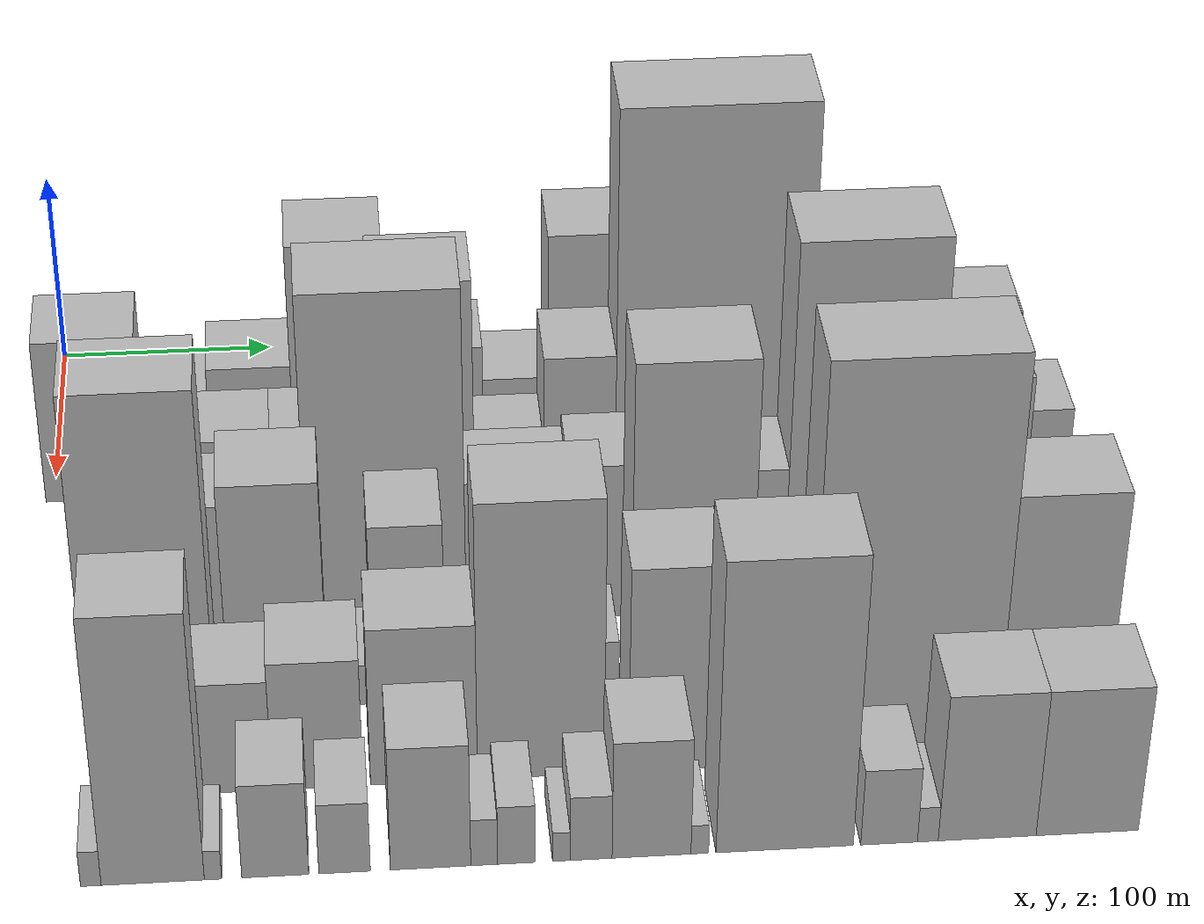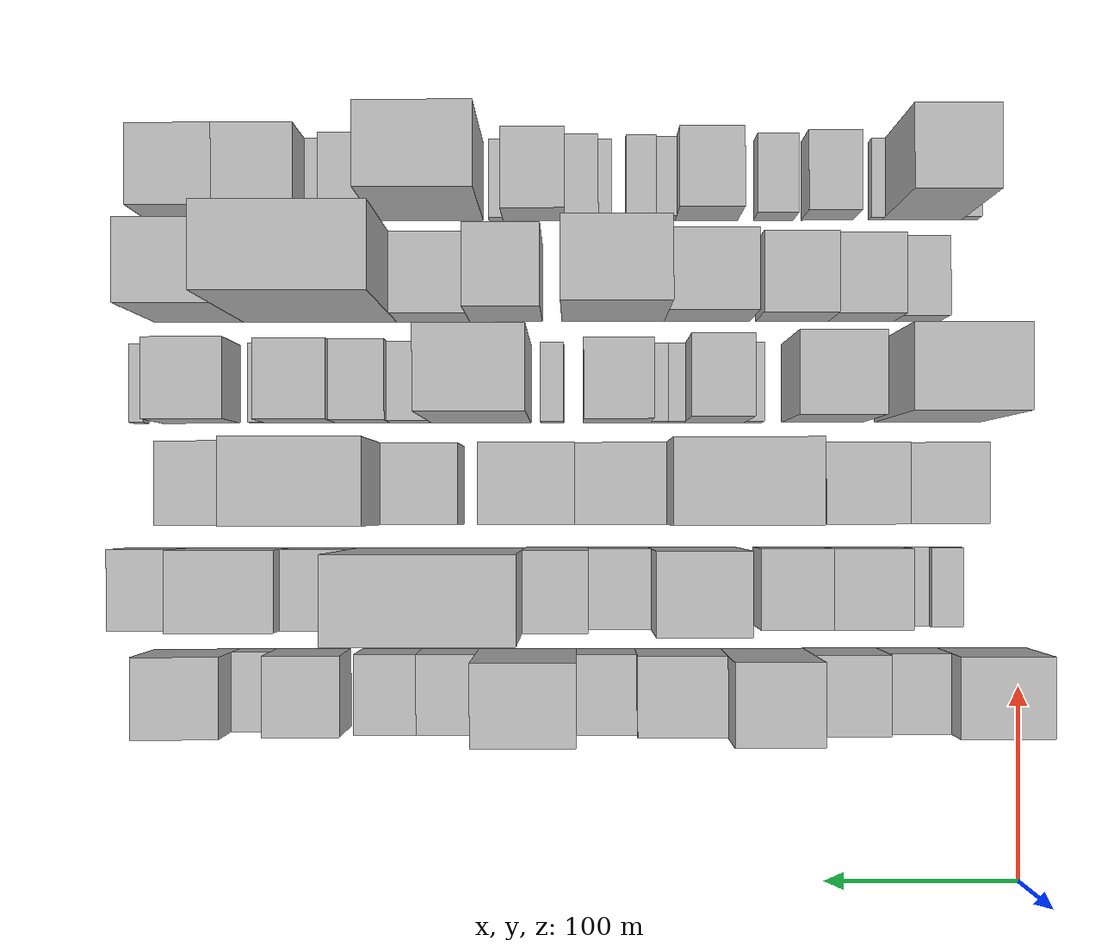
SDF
<sdf version="1.6">
 <world name="default">
  <model name="building_24">
   <static>1</static>
   <pose>100.0000 18.9389 0 0.000000 0.000000 0.000000</pose>
   <link name="link">
    <pose>0 0 43.50 0 0 0</pose>
    <collision name="collision"><geometry><box><size>40.0000 45.7362 87.0000</size></box></geometry></collision>
    <visual name="visual">
     <cast_shadows>0</cast_shadows>
     <geometry><box><size>40.0000 45.7362 87.0000</size></box></geometry>
     <material>
      <script>
       <uri>model://HANNAS_wall/materials/scripts</uri>
       <uri>model://HANNAS_wall/materials/textures</uri>
       <name>vrc/HANNAS_wall</name>
      </script>
     </material>
    </visual>
   </link>
  </model>
  <model name="building_25">
   <static>1</static>
   <pose>100.0000 57.3838 0 0.000000 0.000000 0.000000</pose>
   <link name="link">
    <pose>0 0 27.00 0 0 0</pose>
    <collision name="collision"><geometry><box><size>40.0000 31.1536 54.0000</size></box></geometry></collision>
    <visual name="visual">
     <cast_shadows>0</cast_shadows>
     <geometry><box><size>40.0000 31.1536 54.0000</size></box></geometry>
     <material>
      <script>
       <uri>model://HANNAS_wall/materials/scripts</uri>
       <uri>model://HANNAS_wall/materials/textures</uri>
       <name>vrc/HANNAS_wall</name>
      </script>
     </material>
    </visual>
   </link>
  </model>
  <model name="building_26">
   <static>1</static>
   <pose>100.0000 91.8761 0 0.000000 0.000000 0.000000</pose>
   <link name="link">
    <pose>0 0 34.50 0 0 0</pose>
    <collision name="collision"><geometry><box><size>40.0000 37.8310 69.0000</size></box></geometry></collision>
    <visual name="visual">
     <cast_shadows>0</cast_shadows>
     <geometry><box><size>40.0000 37.8310 69.0000</size></box></geometry>
     <material>
      <script>
       <uri>model://HANNAS_wall/materials/scripts</uri>
       <uri>model://HANNAS_wall/materials/textures</uri>
       <name>vrc/HANNAS_wall</name>
      </script>
     </material>
    </visual>
   </link>
  </model>
  <model name="building_27">
   <static>1</static>
   <pose>100.0000 132.1035 0 0.000000 0.000000 0.000000</pose>
   <link name="link">
    <pose>0 0 66.00 0 0 0</pose>
    <collision name="collision"><geometry><box><size>40.0000 42.6239 132.0000</size></box></geometry></collision>
    <visual name="visual">
     <cast_shadows>0</cast_shadows>
     <geometry><box><size>40.0000 42.6239 132.0000</size></box></geometry>
     <material>
      <script>
       <uri>model://HANNAS_wall/materials/scripts</uri>
       <uri>model://HANNAS_wall/materials/textures</uri>
       <name>vrc/HANNAS_wall</name>
      </script>
     </material>
    </visual>
   </link>
  </model>
  <model name="building_28">
   <static>1</static>
   <pose>100.0000 175.4105 0 0.000000 0.000000 0.000000</pose>
   <link name="link">
    <pose>0 0 37.50 0 0 0</pose>
    <collision name="collision"><geometry><box><size>40.0000 43.9900 75.0000</size></box></geometry></collision>
    <visual name="visual">
     <cast_shadows>0</cast_shadows>
     <geometry><box><size>40.0000 43.9900 75.0000</size></box></geometry>
     <material>
      <script>
       <uri>model://HANNAS_wall/materials/scripts</uri>
       <uri>model://HANNAS_wall/materials/textures</uri>
       <name>vrc/HANNAS_wall</name>
      </script>
     </material>
    </visual>
   </link>
  </model>
  <model name="building_29">
   <static>1</static>
   <pose>100.0000 212.3059 0 0.000000 0.000000 0.000000</pose>
   <link name="link">
    <pose>0 0 28.50 0 0 0</pose>
    <collision name="collision"><geometry><box><size>40.0000 29.8007 57.0000</size></box></geometry></collision>
    <visual name="visual">
     <cast_shadows>0</cast_shadows>
     <geometry><box><size>40.0000 29.8007 57.0000</size></box></geometry>
     <material>
      <script>
       <uri>model://HANNAS_wall/materials/scripts</uri>
       <uri>model://HANNAS_wall/materials/textures</uri>
       <name>vrc/HANNAS_wall</name>
      </script>
     </material>
    </visual>
   </link>
  </model>
  <model name="building_30">
   <static>1</static>
   <pose>100.0000 252.1668 0 0.000000 0.000000 0.000000</pose>
   <link name="link">
    <pose>0 0 66.00 0 0 0</pose>
    <collision name="collision"><geometry><box><size>40.0000 49.9213 132.0000</size></box></geometry></collision>
    <visual name="visual">
     <cast_shadows>0</cast_shadows>
     <geometry><box><size>40.0000 49.9213 132.0000</size></box></geometry>
     <material>
      <script>
       <uri>model://HANNAS_wall/materials/scripts</uri>
       <uri>model://HANNAS_wall/materials/textures</uri>
       <name>vrc/HANNAS_wall</name>
      </script>
     </material>
    </visual>
   </link>
  </model>
  <model name="building_31">
   <static>1</static>
   <pose>100.0000 291.7930 0 0.000000 0.000000 0.000000</pose>
   <link name="link">
    <pose>0 0 28.50 0 0 0</pose>
    <collision name="collision"><geometry><box><size>40.0000 29.3309 57.0000</size></box></geometry></collision>
    <visual name="visual">
     <cast_shadows>0</cast_shadows>
     <geometry><box><size>40.0000 29.3309 57.0000</size></box></geometry>
     <material>
      <script>
       <uri>model://HANNAS_wall/materials/scripts</uri>
       <uri>model://HANNAS_wall/materials/textures</uri>
       <name>vrc/HANNAS_wall</name>
      </script>
     </material>
    </visual>
   </link>
  </model>
  <model name="building_32">
   <static>1</static>
   <pose>100.0000 321.7604 0 0.000000 0.000000 0.000000</pose>
   <link name="link">
    <pose>0 0 28.50 0 0 0</pose>
    <collision name="collision"><geometry><box><size>40.0000 30.6040 57.0000</size></box></geometry></collision>
    <visual name="visual">
     <cast_shadows>0</cast_shadows>
     <geometry><box><size>40.0000 30.6040 57.0000</size></box></geometry>
     <material>
      <script>
       <uri>model://HANNAS_wall/materials/scripts</uri>
       <uri>model://HANNAS_wall/materials/textures</uri>
       <name>vrc/HANNAS_wall</name>
      </script>
     </material>
    </visual>
   </link>
  </model>
  <model name="building_33">
   <static>1</static>
   <pose>100.0000 362.1022 0 0.000000 0.000000 0.000000</pose>
   <link name="link">
    <pose>0 0 34.50 0 0 0</pose>
    <collision name="collision"><geometry><box><size>40.0000 38.0797 69.0000</size></box></geometry></collision>
    <visual name="visual">
     <cast_shadows>0</cast_shadows>
     <geometry><box><size>40.0000 38.0797 69.0000</size></box></geometry>
     <material>
      <script>
       <uri>model://HANNAS_wall/materials/scripts</uri>
       <uri>model://HANNAS_wall/materials/textures</uri>
       <name>vrc/HANNAS_wall</name>
      </script>
     </material>
    </visual>
   </link>
  </model>
  <model name="building_34">
   <static>1</static>
   <pose>100.0000 390.8431 0 0.000000 0.000000 0.000000</pose>
   <link name="link">
    <pose>0 0 16.50 0 0 0</pose>
    <collision name="collision"><geometry><box><size>40.0000 19.4021 33.0000</size></box></geometry></collision>
    <visual name="visual">
     <cast_shadows>0</cast_shadows>
     <geometry><box><size>40.0000 19.4021 33.0000</size></box></geometry>
     <material>
      <script>
       <uri>model://HANNAS_wall/materials/scripts</uri>
       <uri>model://HANNAS_wall/materials/textures</uri>
       <name>vrc/HANNAS_wall</name>
      </script>
     </material>
    </visual>
   </link>
  </model>
  <model name="building_35">
   <static>1</static>
   <pose>100.0000 422.0208 0 0.000000 0.000000 0.000000</pose>
   <link name="link">
    <pose>0 0 40.50 0 0 0</pose>
    <collision name="collision"><geometry><box><size>40.0000 42.9532 81.0000</size></box></geometry></collision>
    <visual name="visual">
     <cast_shadows>0</cast_shadows>
     <geometry><box><size>40.0000 42.9532 81.0000</size></box></geometry>
     <material>
      <script>
       <uri>model://HANNAS_wall/materials/scripts</uri>
       <uri>model://HANNAS_wall/materials/textures</uri>
       <name>vrc/HANNAS_wall</name>
      </script>
     </material>
    </visual>
   </link>
  </model>
  <model name="building_68">
   <static>1</static>
   <pose>152.0000 40.3705 0 0.000000 0.000000 0.000000</pose>
   <link name="link">
    <pose>0 0 15.00 0 0 0</pose>
    <collision name="collision"><geometry><box><size>40.0000 16.1374 30.0000</size></box></geometry></collision>
    <visual name="visual">
     <cast_shadows>0</cast_shadows>
     <geometry><box><size>40.0000 16.1374 30.0000</size></box></geometry>
     <material>
      <script>
       <uri>model://HANNAS_wall/materials/scripts</uri>
       <uri>model://HANNAS_wall/materials/textures</uri>
       <name>vrc/HANNAS_wall</name>
      </script>
     </material>
    </visual>
   </link>
  </model>
  <model name="building_69">
   <static>1</static>
   <pose>152.0000 53.4373 0 0.000000 0.000000 0.000000</pose>
   <link name="link">
    <pose>0 0 10.50 0 0 0</pose>
    <collision name="collision"><geometry><box><size>40.0000 9.9963 21.0000</size></box></geometry></collision>
    <visual name="visual">
     <cast_shadows>0</cast_shadows>
     <geometry><box><size>40.0000 9.9963 21.0000</size></box></geometry>
     <material>
      <script>
       <uri>model://HANNAS_wall/materials/scripts</uri>
       <uri>model://HANNAS_wall/materials/textures</uri>
       <name>vrc/HANNAS_wall</name>
      </script>
     </material>
    </visual>
   </link>
  </model>
  <model name="building_70">
   <static>1</static>
   <pose>152.0000 81.0825 0 0.000000 0.000000 0.000000</pose>
   <link name="link">
    <pose>0 0 33.00 0 0 0</pose>
    <collision name="collision"><geometry><box><size>40.0000 39.2940 66.0000</size></box></geometry></collision>
    <visual name="visual">
     <cast_shadows>0</cast_shadows>
     <geometry><box><size>40.0000 39.2940 66.0000</size></box></geometry>
     <material>
      <script>
       <uri>model://HANNAS_wall/materials/scripts</uri>
       <uri>model://HANNAS_wall/materials/textures</uri>
       <name>vrc/HANNAS_wall</name>
      </script>
     </material>
    </visual>
   </link>
  </model>
  <model name="building_71">
   <static>1</static>
   <pose>152.0000 118.6534 0 0.000000 0.000000 0.000000</pose>
   <link name="link">
    <pose>0 0 33.00 0 0 0</pose>
    <collision name="collision"><geometry><box><size>40.0000 35.8480 66.0000</size></box></geometry></collision>
    <visual name="visual">
     <cast_shadows>0</cast_shadows>
     <geometry><box><size>40.0000 35.8480 66.0000</size></box></geometry>
     <material>
      <script>
       <uri>model://HANNAS_wall/materials/scripts</uri>
       <uri>model://HANNAS_wall/materials/textures</uri>
       <name>vrc/HANNAS_wall</name>
      </script>
     </material>
    </visual>
   </link>
  </model>
  <model name="building_72">
   <static>1</static>
   <pose>152.0000 167.9534 0 0.000000 0.000000 0.000000</pose>
   <link name="link">
    <pose>0 0 72.00 0 0 0</pose>
    <collision name="collision"><geometry><box><size>40.0000 44.7520 144.0000</size></box></geometry></collision>
    <visual name="visual">
     <cast_shadows>0</cast_shadows>
     <geometry><box><size>40.0000 44.7520 144.0000</size></box></geometry>
     <material>
      <script>
       <uri>model://HANNAS_wall/materials/scripts</uri>
       <uri>model://HANNAS_wall/materials/textures</uri>
       <name>vrc/HANNAS_wall</name>
      </script>
     </material>
    </visual>
   </link>
  </model>
  <model name="building_73">
   <static>1</static>
   <pose>152.0000 205.8561 0 0.000000 0.000000 0.000000</pose>
   <link name="link">
    <pose>0 0 28.50 0 0 0</pose>
    <collision name="collision"><geometry><box><size>40.0000 31.0533 57.0000</size></box></geometry></collision>
    <visual name="visual">
     <cast_shadows>0</cast_shadows>
     <geometry><box><size>40.0000 31.0533 57.0000</size></box></geometry>
     <material>
      <script>
       <uri>model://HANNAS_wall/materials/scripts</uri>
       <uri>model://HANNAS_wall/materials/textures</uri>
       <name>vrc/HANNAS_wall</name>
      </script>
     </material>
    </visual>
   </link>
  </model>
  <model name="building_74">
   <static>1</static>
   <pose>152.0000 237.2640 0 0.000000 0.000000 0.000000</pose>
   <link name="link">
    <pose>0 0 51.00 0 0 0</pose>
    <collision name="collision"><geometry><box><size>40.0000 31.7625 102.0000</size></box></geometry></collision>
    <visual name="visual">
     <cast_shadows>0</cast_shadows>
     <geometry><box><size>40.0000 31.7625 102.0000</size></box></geometry>
     <material>
      <script>
       <uri>model://HANNAS_wall/materials/scripts</uri>
       <uri>model://HANNAS_wall/materials/textures</uri>
       <name>vrc/HANNAS_wall</name>
      </script>
     </material>
    </visual>
   </link>
  </model>
  <model name="building_75">
   <static>1</static>
   <pose>152.0000 295.6963 0 0.000000 0.000000 0.000000</pose>
   <link name="link">
    <pose>0 0 112.50 0 0 0</pose>
    <collision name="collision"><geometry><box><size>40.0000 85.1020 225.0000</size></box></geometry></collision>
    <visual name="visual">
     <cast_shadows>0</cast_shadows>
     <geometry><box><size>40.0000 85.1020 225.0000</size></box></geometry>
     <material>
      <script>
       <uri>model://HANNAS_wall/materials/scripts</uri>
       <uri>model://HANNAS_wall/materials/textures</uri>
       <name>vrc/HANNAS_wall</name>
      </script>
     </material>
    </visual>
   </link>
  </model>
  <model name="building_76">
   <static>1</static>
   <pose>152.0000 355.6056 0 0.000000 0.000000 0.000000</pose>
   <link name="link">
    <pose>0 0 31.50 0 0 0</pose>
    <collision name="collision"><geometry><box><size>40.0000 34.7167 63.0000</size></box></geometry></collision>
    <visual name="visual">
     <cast_shadows>0</cast_shadows>
     <geometry><box><size>40.0000 34.7167 63.0000</size></box></geometry>
     <material>
      <script>
       <uri>model://HANNAS_wall/materials/scripts</uri>
       <uri>model://HANNAS_wall/materials/textures</uri>
       <name>vrc/HANNAS_wall</name>
      </script>
     </material>
    </visual>
   </link>
  </model>
  <model name="building_77">
   <static>1</static>
   <pose>152.0000 399.3563 0 0.000000 0.000000 0.000000</pose>
   <link name="link">
    <pose>0 0 45.00 0 0 0</pose>
    <collision name="collision"><geometry><box><size>40.0000 52.7846 90.0000</size></box></geometry></collision>
    <visual name="visual">
     <cast_shadows>0</cast_shadows>
     <geometry><box><size>40.0000 52.7846 90.0000</size></box></geometry>
     <material>
      <script>
       <uri>model://HANNAS_wall/materials/scripts</uri>
       <uri>model://HANNAS_wall/materials/textures</uri>
       <name>vrc/HANNAS_wall</name>
      </script>
     </material>
    </visual>
   </link>
  </model>
  <model name="building_78">
   <static>1</static>
   <pose>152.0000 441.9000 0 0.000000 0.000000 0.000000</pose>
   <link name="link">
    <pose>0 0 31.50 0 0 0</pose>
    <collision name="collision"><geometry><box><size>40.0000 32.3029 63.0000</size></box></geometry></collision>
    <visual name="visual">
     <cast_shadows>0</cast_shadows>
     <geometry><box><size>40.0000 32.3029 63.0000</size></box></geometry>
     <material>
      <script>
       <uri>model://HANNAS_wall/materials/scripts</uri>
       <uri>model://HANNAS_wall/materials/textures</uri>
       <name>vrc/HANNAS_wall</name>
      </script>
     </material>
    </visual>
   </link>
  </model>
  <model name="building_114">
   <static>1</static>
   <pose>204.0000 44.0211 0 0.000000 0.000000 0.000000</pose>
   <link name="link">
    <pose>0 0 33.00 0 0 0</pose>
    <collision name="collision"><geometry><box><size>40.0000 39.4262 66.0000</size></box></geometry></collision>
    <visual name="visual">
     <cast_shadows>0</cast_shadows>
     <geometry><box><size>40.0000 39.4262 66.0000</size></box></geometry>
     <material>
      <script>
       <uri>model://HANNAS_wall/materials/scripts</uri>
       <uri>model://HANNAS_wall/materials/textures</uri>
       <name>vrc/HANNAS_wall</name>
      </script>
     </material>
    </visual>
   </link>
  </model>
  <model name="building_115">
   <static>1</static>
   <pose>204.0000 84.3707 0 0.000000 0.000000 0.000000</pose>
   <link name="link">
    <pose>0 0 34.50 0 0 0</pose>
    <collision name="collision"><geometry><box><size>40.0000 41.2730 69.0000</size></box></geometry></collision>
    <visual name="visual">
     <cast_shadows>0</cast_shadows>
     <geometry><box><size>40.0000 41.2730 69.0000</size></box></geometry>
     <material>
      <script>
       <uri>model://HANNAS_wall/materials/scripts</uri>
       <uri>model://HANNAS_wall/materials/textures</uri>
       <name>vrc/HANNAS_wall</name>
      </script>
     </material>
    </visual>
   </link>
  </model>
  <model name="building_116">
   <static>1</static>
   <pose>204.0000 149.1762 0 0.000000 0.000000 0.000000</pose>
   <link name="link">
    <pose>0 0 87.00 0 0 0</pose>
    <collision name="collision"><geometry><box><size>40.0000 68.3380 174.0000</size></box></geometry></collision>
    <visual name="visual">
     <cast_shadows>0</cast_shadows>
     <geometry><box><size>40.0000 68.3380 174.0000</size></box></geometry>
     <material>
      <script>
       <uri>model://HANNAS_wall/materials/scripts</uri>
       <uri>model://HANNAS_wall/materials/textures</uri>
       <name>vrc/HANNAS_wall</name>
      </script>
     </material>
    </visual>
   </link>
  </model>
  <model name="building_117">
   <static>1</static>
   <pose>204.0000 205.6104 0 0.000000 0.000000 0.000000</pose>
   <link name="link">
    <pose>0 0 37.50 0 0 0</pose>
    <collision name="collision"><geometry><box><size>40.0000 44.5305 75.0000</size></box></geometry></collision>
    <visual name="visual">
     <cast_shadows>0</cast_shadows>
     <geometry><box><size>40.0000 44.5305 75.0000</size></box></geometry>
     <material>
      <script>
       <uri>model://HANNAS_wall/materials/scripts</uri>
       <uri>model://HANNAS_wall/materials/textures</uri>
       <name>vrc/HANNAS_wall</name>
      </script>
     </material>
    </visual>
   </link>
  </model>
  <model name="building_118">
   <static>1</static>
   <pose>204.0000 251.3839 0 0.000000 0.000000 0.000000</pose>
   <link name="link">
    <pose>0 0 40.50 0 0 0</pose>
    <collision name="collision"><geometry><box><size>40.0000 47.0164 81.0000</size></box></geometry></collision>
    <visual name="visual">
     <cast_shadows>0</cast_shadows>
     <geometry><box><size>40.0000 47.0164 81.0000</size></box></geometry>
     <material>
      <script>
       <uri>model://HANNAS_wall/materials/scripts</uri>
       <uri>model://HANNAS_wall/materials/textures</uri>
       <name>vrc/HANNAS_wall</name>
      </script>
     </material>
    </visual>
   </link>
  </model>
  <model name="building_119">
   <static>1</static>
   <pose>204.0000 303.8186 0 0.000000 0.000000 0.000000</pose>
   <link name="link">
    <pose>0 0 37.50 0 0 0</pose>
    <collision name="collision"><geometry><box><size>40.0000 37.8530 75.0000</size></box></geometry></collision>
    <visual name="visual">
     <cast_shadows>0</cast_shadows>
     <geometry><box><size>40.0000 37.8530 75.0000</size></box></geometry>
     <material>
      <script>
       <uri>model://HANNAS_wall/materials/scripts</uri>
       <uri>model://HANNAS_wall/materials/textures</uri>
       <name>vrc/HANNAS_wall</name>
      </script>
     </material>
    </visual>
   </link>
  </model>
  <model name="building_120">
   <static>1</static>
   <pose>204.0000 354.7901 0 0.000000 0.000000 0.000000</pose>
   <link name="link">
    <pose>0 0 94.50 0 0 0</pose>
    <collision name="collision"><geometry><box><size>40.0000 64.0901 189.0000</size></box></geometry></collision>
    <visual name="visual">
     <cast_shadows>0</cast_shadows>
     <geometry><box><size>40.0000 64.0901 189.0000</size></box></geometry>
     <material>
      <script>
       <uri>model://HANNAS_wall/materials/scripts</uri>
       <uri>model://HANNAS_wall/materials/textures</uri>
       <name>vrc/HANNAS_wall</name>
      </script>
     </material>
    </visual>
   </link>
  </model>
  <model name="building_121">
   <static>1</static>
   <pose>204.0000 406.4677 0 0.000000 0.000000 0.000000</pose>
   <link name="link">
    <pose>0 0 58.50 0 0 0</pose>
    <collision name="collision"><geometry><box><size>40.0000 39.2651 117.0000</size></box></geometry></collision>
    <visual name="visual">
     <cast_shadows>0</cast_shadows>
     <geometry><box><size>40.0000 39.2651 117.0000</size></box></geometry>
     <material>
      <script>
       <uri>model://HANNAS_wall/materials/scripts</uri>
       <uri>model://HANNAS_wall/materials/textures</uri>
       <name>vrc/HANNAS_wall</name>
      </script>
     </material>
    </visual>
   </link>
  </model>
  <model name="building_158">
   <static>1</static>
   <pose>256.0000 46.8867 0 0.000000 0.000000 0.000000</pose>
   <link name="link">
    <pose>0 0 82.50 0 0 0</pose>
    <collision name="collision"><geometry><box><size>40.0000 54.3212 165.0000</size></box></geometry></collision>
    <visual name="visual">
     <cast_shadows>0</cast_shadows>
     <geometry><box><size>40.0000 54.3212 165.0000</size></box></geometry>
     <material>
      <script>
       <uri>model://HANNAS_wall/materials/scripts</uri>
       <uri>model://HANNAS_wall/materials/textures</uri>
       <name>vrc/HANNAS_wall</name>
      </script>
     </material>
    </visual>
   </link>
  </model>
  <model name="building_159">
   <static>1</static>
   <pose>256.0000 100.8843 0 0.000000 0.000000 0.000000</pose>
   <link name="link">
    <pose>0 0 58.50 0 0 0</pose>
    <collision name="collision"><geometry><box><size>40.0000 41.6742 117.0000</size></box></geometry></collision>
    <visual name="visual">
     <cast_shadows>0</cast_shadows>
     <geometry><box><size>40.0000 41.6742 117.0000</size></box></geometry>
     <material>
      <script>
       <uri>model://HANNAS_wall/materials/scripts</uri>
       <uri>model://HANNAS_wall/materials/textures</uri>
       <name>vrc/HANNAS_wall</name>
      </script>
     </material>
    </visual>
   </link>
  </model>
  <model name="building_160">
   <static>1</static>
   <pose>256.0000 136.2108 0 0.000000 0.000000 0.000000</pose>
   <link name="link">
    <pose>0 0 10.50 0 0 0</pose>
    <collision name="collision"><geometry><box><size>40.0000 8.9787 21.0000</size></box></geometry></collision>
    <visual name="visual">
     <cast_shadows>0</cast_shadows>
     <geometry><box><size>40.0000 8.9787 21.0000</size></box></geometry>
     <material>
      <script>
       <uri>model://HANNAS_wall/materials/scripts</uri>
       <uri>model://HANNAS_wall/materials/textures</uri>
       <name>vrc/HANNAS_wall</name>
      </script>
     </material>
    </visual>
   </link>
  </model>
  <model name="building_161">
   <static>1</static>
   <pose>256.0000 156.1587 0 0.000000 0.000000 0.000000</pose>
   <link name="link">
    <pose>0 0 46.50 0 0 0</pose>
    <collision name="collision"><geometry><box><size>40.0000 30.9172 93.0000</size></box></geometry></collision>
    <visual name="visual">
     <cast_shadows>0</cast_shadows>
     <geometry><box><size>40.0000 30.9172 93.0000</size></box></geometry>
     <material>
      <script>
       <uri>model://HANNAS_wall/materials/scripts</uri>
       <uri>model://HANNAS_wall/materials/textures</uri>
       <name>vrc/HANNAS_wall</name>
      </script>
     </material>
    </visual>
   </link>
  </model>
  <model name="building_162">
   <static>1</static>
   <pose>256.0000 175.9211 0 0.000000 0.000000 0.000000</pose>
   <link name="link">
    <pose>0 0 9.00 0 0 0</pose>
    <collision name="collision"><geometry><box><size>40.0000 8.6076 18.0000</size></box></geometry></collision>
    <visual name="visual">
     <cast_shadows>0</cast_shadows>
     <geometry><box><size>40.0000 8.6076 18.0000</size></box></geometry>
     <material>
      <script>
       <uri>model://HANNAS_wall/materials/scripts</uri>
       <uri>model://HANNAS_wall/materials/textures</uri>
       <name>vrc/HANNAS_wall</name>
      </script>
     </material>
    </visual>
   </link>
  </model>
  <model name="building_163">
   <static>1</static>
   <pose>256.0000 184.5144 0 0.000000 0.000000 0.000000</pose>
   <link name="link">
    <pose>0 0 9.00 0 0 0</pose>
    <collision name="collision"><geometry><box><size>40.0000 8.5790 18.0000</size></box></geometry></collision>
    <visual name="visual">
     <cast_shadows>0</cast_shadows>
     <geometry><box><size>40.0000 8.5790 18.0000</size></box></geometry>
     <material>
      <script>
       <uri>model://HANNAS_wall/materials/scripts</uri>
       <uri>model://HANNAS_wall/materials/textures</uri>
       <name>vrc/HANNAS_wall</name>
      </script>
     </material>
    </visual>
   </link>
  </model>
  <model name="building_164">
   <static>1</static>
   <pose>256.0000 206.1398 0 0.000000 0.000000 0.000000</pose>
   <link name="link">
    <pose>0 0 33.00 0 0 0</pose>
    <collision name="collision"><geometry><box><size>40.0000 34.6718 66.0000</size></box></geometry></collision>
    <visual name="visual">
     <cast_shadows>0</cast_shadows>
     <geometry><box><size>40.0000 34.6718 66.0000</size></box></geometry>
     <material>
      <script>
       <uri>model://HANNAS_wall/materials/scripts</uri>
       <uri>model://HANNAS_wall/materials/textures</uri>
       <name>vrc/HANNAS_wall</name>
      </script>
     </material>
    </visual>
   </link>
  </model>
  <model name="building_165">
   <static>1</static>
   <pose>256.0000 239.3837 0 0.000000 0.000000 0.000000</pose>
   <link name="link">
    <pose>0 0 13.50 0 0 0</pose>
    <collision name="collision"><geometry><box><size>40.0000 11.8160 27.0000</size></box></geometry></collision>
    <visual name="visual">
     <cast_shadows>0</cast_shadows>
     <geometry><box><size>40.0000 11.8160 27.0000</size></box></geometry>
     <material>
      <script>
       <uri>model://HANNAS_wall/materials/scripts</uri>
       <uri>model://HANNAS_wall/materials/textures</uri>
       <name>vrc/HANNAS_wall</name>
      </script>
     </material>
    </visual>
   </link>
  </model>
  <model name="building_166">
   <static>1</static>
   <pose>256.0000 275.8806 0 0.000000 0.000000 0.000000</pose>
   <link name="link">
    <pose>0 0 84.00 0 0 0</pose>
    <collision name="collision"><geometry><box><size>40.0000 51.1778 168.0000</size></box></geometry></collision>
    <visual name="visual">
     <cast_shadows>0</cast_shadows>
     <geometry><box><size>40.0000 51.1778 168.0000</size></box></geometry>
     <material>
      <script>
       <uri>model://HANNAS_wall/materials/scripts</uri>
       <uri>model://HANNAS_wall/materials/textures</uri>
       <name>vrc/HANNAS_wall</name>
      </script>
     </material>
    </visual>
   </link>
  </model>
  <model name="building_167">
   <static>1</static>
   <pose>256.0000 311.9198 0 0.000000 0.000000 0.000000</pose>
   <link name="link">
    <pose>0 0 18.00 0 0 0</pose>
    <collision name="collision"><geometry><box><size>40.0000 20.9005 36.0000</size></box></geometry></collision>
    <visual name="visual">
     <cast_shadows>0</cast_shadows>
     <geometry><box><size>40.0000 20.9005 36.0000</size></box></geometry>
     <material>
      <script>
       <uri>model://HANNAS_wall/materials/scripts</uri>
       <uri>model://HANNAS_wall/materials/textures</uri>
       <name>vrc/HANNAS_wall</name>
      </script>
     </material>
    </visual>
   </link>
  </model>
  <model name="building_168">
   <static>1</static>
   <pose>256.0000 336.3967 0 0.000000 0.000000 0.000000</pose>
   <link name="link">
    <pose>0 0 25.50 0 0 0</pose>
    <collision name="collision"><geometry><box><size>40.0000 28.0534 51.0000</size></box></geometry></collision>
    <visual name="visual">
     <cast_shadows>0</cast_shadows>
     <geometry><box><size>40.0000 28.0534 51.0000</size></box></geometry>
     <material>
      <script>
       <uri>model://HANNAS_wall/materials/scripts</uri>
       <uri>model://HANNAS_wall/materials/textures</uri>
       <name>vrc/HANNAS_wall</name>
      </script>
     </material>
    </visual>
   </link>
  </model>
  <model name="building_169">
   <static>1</static>
   <pose>256.0000 368.3785 0 0.000000 0.000000 0.000000</pose>
   <link name="link">
    <pose>0 0 31.50 0 0 0</pose>
    <collision name="collision"><geometry><box><size>40.0000 35.9102 63.0000</size></box></geometry></collision>
    <visual name="visual">
     <cast_shadows>0</cast_shadows>
     <geometry><box><size>40.0000 35.9102 63.0000</size></box></geometry>
     <material>
      <script>
       <uri>model://HANNAS_wall/materials/scripts</uri>
       <uri>model://HANNAS_wall/materials/textures</uri>
       <name>vrc/HANNAS_wall</name>
      </script>
     </material>
    </visual>
   </link>
  </model>
  <model name="building_170">
   <static>1</static>
   <pose>256.0000 390.0633 0 0.000000 0.000000 0.000000</pose>
   <link name="link">
    <pose>0 0 9.00 0 0 0</pose>
    <collision name="collision"><geometry><box><size>40.0000 7.4593 18.0000</size></box></geometry></collision>
    <visual name="visual">
     <cast_shadows>0</cast_shadows>
     <geometry><box><size>40.0000 7.4593 18.0000</size></box></geometry>
     <material>
      <script>
       <uri>model://HANNAS_wall/materials/scripts</uri>
       <uri>model://HANNAS_wall/materials/textures</uri>
       <name>vrc/HANNAS_wall</name>
      </script>
     </material>
    </visual>
   </link>
  </model>
  <model name="building_171">
   <static>1</static>
   <pose>256.0000 419.8210 0 0.000000 0.000000 0.000000</pose>
   <link name="link">
    <pose>0 0 36.00 0 0 0</pose>
    <collision name="collision"><geometry><box><size>40.0000 40.0562 72.0000</size></box></geometry></collision>
    <visual name="visual">
     <cast_shadows>0</cast_shadows>
     <geometry><box><size>40.0000 40.0562 72.0000</size></box></geometry>
     <material>
      <script>
       <uri>model://HANNAS_wall/materials/scripts</uri>
       <uri>model://HANNAS_wall/materials/textures</uri>
       <name>vrc/HANNAS_wall</name>
      </script>
     </material>
    </visual>
   </link>
  </model>
  <model name="building_172">
   <static>1</static>
   <pose>256.0000 450.6323 0 0.000000 0.000000 0.000000</pose>
   <link name="link">
    <pose>0 0 9.00 0 0 0</pose>
    <collision name="collision"><geometry><box><size>40.0000 7.5662 18.0000</size></box></geometry></collision>
    <visual name="visual">
     <cast_shadows>0</cast_shadows>
     <geometry><box><size>40.0000 7.5662 18.0000</size></box></geometry>
     <material>
      <script>
       <uri>model://HANNAS_wall/materials/scripts</uri>
       <uri>model://HANNAS_wall/materials/textures</uri>
       <name>vrc/HANNAS_wall</name>
      </script>
     </material>
    </visual>
   </link>
  </model>
  <model name="building_210">
   <static>1</static>
   <pose>308.0000 51.8835 0 0.000000 0.000000 0.000000</pose>
   <link name="link">
    <pose>0 0 21.00 0 0 0</pose>
    <collision name="collision"><geometry><box><size>40.0000 23.5510 42.0000</size></box></geometry></collision>
    <visual name="visual">
     <cast_shadows>0</cast_shadows>
     <geometry><box><size>40.0000 23.5510 42.0000</size></box></geometry>
     <material>
      <script>
       <uri>model://HANNAS_wall/materials/scripts</uri>
       <uri>model://HANNAS_wall/materials/textures</uri>
       <name>vrc/HANNAS_wall</name>
      </script>
     </material>
    </visual>
   </link>
  </model>
  <model name="building_211">
   <static>1</static>
   <pose>308.0000 80.5681 0 0.000000 0.000000 0.000000</pose>
   <link name="link">
    <pose>0 0 28.50 0 0 0</pose>
    <collision name="collision"><geometry><box><size>40.0000 33.8182 57.0000</size></box></geometry></collision>
    <visual name="visual">
     <cast_shadows>0</cast_shadows>
     <geometry><box><size>40.0000 33.8182 57.0000</size></box></geometry>
     <material>
      <script>
       <uri>model://HANNAS_wall/materials/scripts</uri>
       <uri>model://HANNAS_wall/materials/textures</uri>
       <name>vrc/HANNAS_wall</name>
      </script>
     </material>
    </visual>
   </link>
  </model>
  <model name="building_212">
   <static>1</static>
   <pose>308.0000 116.1345 0 0.000000 0.000000 0.000000</pose>
   <link name="link">
    <pose>0 0 33.00 0 0 0</pose>
    <collision name="collision"><geometry><box><size>40.0000 37.3147 66.0000</size></box></geometry></collision>
    <visual name="visual">
     <cast_shadows>0</cast_shadows>
     <geometry><box><size>40.0000 37.3147 66.0000</size></box></geometry>
     <material>
      <script>
       <uri>model://HANNAS_wall/materials/scripts</uri>
       <uri>model://HANNAS_wall/materials/textures</uri>
       <name>vrc/HANNAS_wall</name>
      </script>
     </material>
    </visual>
   </link>
  </model>
  <model name="building_213">
   <static>1</static>
   <pose>308.0000 159.8506 0 0.000000 0.000000 0.000000</pose>
   <link name="link">
    <pose>0 0 40.50 0 0 0</pose>
    <collision name="collision"><geometry><box><size>40.0000 44.1175 81.0000</size></box></geometry></collision>
    <visual name="visual">
     <cast_shadows>0</cast_shadows>
     <geometry><box><size>40.0000 44.1175 81.0000</size></box></geometry>
     <material>
      <script>
       <uri>model://HANNAS_wall/materials/scripts</uri>
       <uri>model://HANNAS_wall/materials/textures</uri>
       <name>vrc/HANNAS_wall</name>
      </script>
     </material>
    </visual>
   </link>
  </model>
  <model name="building_214">
   <static>1</static>
   <pose>308.0000 208.1776 0 0.000000 0.000000 0.000000</pose>
   <link name="link">
    <pose>0 0 70.50 0 0 0</pose>
    <collision name="collision"><geometry><box><size>40.0000 52.5364 141.0000</size></box></geometry></collision>
    <visual name="visual">
     <cast_shadows>0</cast_shadows>
     <geometry><box><size>40.0000 52.5364 141.0000</size></box></geometry>
     <material>
      <script>
       <uri>model://HANNAS_wall/materials/scripts</uri>
       <uri>model://HANNAS_wall/materials/textures</uri>
       <name>vrc/HANNAS_wall</name>
      </script>
     </material>
    </visual>
   </link>
  </model>
  <model name="building_215">
   <static>1</static>
   <pose>308.0000 263.0836 0 0.000000 0.000000 0.000000</pose>
   <link name="link">
    <pose>0 0 52.50 0 0 0</pose>
    <collision name="collision"><geometry><box><size>40.0000 37.2755 105.0000</size></box></geometry></collision>
    <visual name="visual">
     <cast_shadows>0</cast_shadows>
     <geometry><box><size>40.0000 37.2755 105.0000</size></box></geometry>
     <material>
      <script>
       <uri>model://HANNAS_wall/materials/scripts</uri>
       <uri>model://HANNAS_wall/materials/textures</uri>
       <name>vrc/HANNAS_wall</name>
      </script>
     </material>
    </visual>
   </link>
  </model>
  <model name="building_216">
   <static>1</static>
   <pose>308.0000 300.5353 0 0.000000 0.000000 0.000000</pose>
   <link name="link">
    <pose>0 0 31.50 0 0 0</pose>
    <collision name="collision"><geometry><box><size>40.0000 37.6280 63.0000</size></box></geometry></collision>
    <visual name="visual">
     <cast_shadows>0</cast_shadows>
     <geometry><box><size>40.0000 37.6280 63.0000</size></box></geometry>
     <material>
      <script>
       <uri>model://HANNAS_wall/materials/scripts</uri>
       <uri>model://HANNAS_wall/materials/textures</uri>
       <name>vrc/HANNAS_wall</name>
      </script>
     </material>
    </visual>
   </link>
  </model>
  <model name="building_217">
   <static>1</static>
   <pose>308.0000 358.7256 0 0.000000 0.000000 0.000000</pose>
   <link name="link">
    <pose>0 0 100.50 0 0 0</pose>
    <collision name="collision"><geometry><box><size>40.0000 78.7526 201.0000</size></box></geometry></collision>
    <visual name="visual">
     <cast_shadows>0</cast_shadows>
     <geometry><box><size>40.0000 78.7526 201.0000</size></box></geometry>
     <material>
      <script>
       <uri>model://HANNAS_wall/materials/scripts</uri>
       <uri>model://HANNAS_wall/materials/textures</uri>
       <name>vrc/HANNAS_wall</name>
      </script>
     </material>
    </visual>
   </link>
  </model>
  <model name="building_218">
   <static>1</static>
   <pose>308.0000 420.8518 0 0.000000 0.000000 0.000000</pose>
   <link name="link">
    <pose>0 0 66.00 0 0 0</pose>
    <collision name="collision"><geometry><box><size>40.0000 45.4997 132.0000</size></box></geometry></collision>
    <visual name="visual">
     <cast_shadows>0</cast_shadows>
     <geometry><box><size>40.0000 45.4997 132.0000</size></box></geometry>
     <material>
      <script>
       <uri>model://HANNAS_wall/materials/scripts</uri>
       <uri>model://HANNAS_wall/materials/textures</uri>
       <name>vrc/HANNAS_wall</name>
      </script>
     </material>
    </visual>
   </link>
  </model>
  <model name="building_256">
   <static>1</static>
   <pose>360.0000 24.8715 0 0.000000 0.000000 0.000000</pose>
   <link name="link">
    <pose>0 0 9.00 0 0 0</pose>
    <collision name="collision"><geometry><box><size>40.0000 8.1650 18.0000</size></box></geometry></collision>
    <visual name="visual">
     <cast_shadows>0</cast_shadows>
     <geometry><box><size>40.0000 8.1650 18.0000</size></box></geometry>
     <material>
      <script>
       <uri>model://HANNAS_wall/materials/scripts</uri>
       <uri>model://HANNAS_wall/materials/textures</uri>
       <name>vrc/HANNAS_wall</name>
      </script>
     </material>
    </visual>
   </link>
  </model>
  <model name="building_257">
   <static>1</static>
   <pose>360.0000 49.3883 0 0.000000 0.000000 0.000000</pose>
   <link name="link">
    <pose>0 0 67.50 0 0 0</pose>
    <collision name="collision"><geometry><box><size>40.0000 40.8686 135.0000</size></box></geometry></collision>
    <visual name="visual">
     <cast_shadows>0</cast_shadows>
     <geometry><box><size>40.0000 40.8686 135.0000</size></box></geometry>
     <material>
      <script>
       <uri>model://HANNAS_wall/materials/scripts</uri>
       <uri>model://HANNAS_wall/materials/textures</uri>
       <name>vrc/HANNAS_wall</name>
      </script>
     </material>
    </visual>
   </link>
  </model>
  <model name="building_258">
   <static>1</static>
   <pose>360.0000 73.2610 0 0.000000 0.000000 0.000000</pose>
   <link name="link">
    <pose>0 0 7.50 0 0 0</pose>
    <collision name="collision"><geometry><box><size>40.0000 6.8769 15.0000</size></box></geometry></collision>
    <visual name="visual">
     <cast_shadows>0</cast_shadows>
     <geometry><box><size>40.0000 6.8769 15.0000</size></box></geometry>
     <material>
      <script>
       <uri>model://HANNAS_wall/materials/scripts</uri>
       <uri>model://HANNAS_wall/materials/textures</uri>
       <name>vrc/HANNAS_wall</name>
      </script>
     </material>
    </visual>
   </link>
  </model>
  <model name="building_259">
   <static>1</static>
   <pose>360.0000 98.0328 0 0.000000 0.000000 0.000000</pose>
   <link name="link">
    <pose>0 0 24.00 0 0 0</pose>
    <collision name="collision"><geometry><box><size>40.0000 26.6667 48.0000</size></box></geometry></collision>
    <visual name="visual">
     <cast_shadows>0</cast_shadows>
     <geometry><box><size>40.0000 26.6667 48.0000</size></box></geometry>
     <material>
      <script>
       <uri>model://HANNAS_wall/materials/scripts</uri>
       <uri>model://HANNAS_wall/materials/textures</uri>
       <name>vrc/HANNAS_wall</name>
      </script>
     </material>
    </visual>
   </link>
  </model>
  <model name="building_260">
   <static>1</static>
   <pose>360.0000 125.6386 0 0.000000 0.000000 0.000000</pose>
   <link name="link">
    <pose>0 0 18.00 0 0 0</pose>
    <collision name="collision"><geometry><box><size>40.0000 20.5449 36.0000</size></box></geometry></collision>
    <visual name="visual">
     <cast_shadows>0</cast_shadows>
     <geometry><box><size>40.0000 20.5449 36.0000</size></box></geometry>
     <material>
      <script>
       <uri>model://HANNAS_wall/materials/scripts</uri>
       <uri>model://HANNAS_wall/materials/textures</uri>
       <name>vrc/HANNAS_wall</name>
      </script>
     </material>
    </visual>
   </link>
  </model>
  <model name="building_261">
   <static>1</static>
   <pose>360.0000 159.9877 0 0.000000 0.000000 0.000000</pose>
   <link name="link">
    <pose>0 0 31.50 0 0 0</pose>
    <collision name="collision"><geometry><box><size>40.0000 32.1533 63.0000</size></box></geometry></collision>
    <visual name="visual">
     <cast_shadows>0</cast_shadows>
     <geometry><box><size>40.0000 32.1533 63.0000</size></box></geometry>
     <material>
      <script>
       <uri>model://HANNAS_wall/materials/scripts</uri>
       <uri>model://HANNAS_wall/materials/textures</uri>
       <name>vrc/HANNAS_wall</name>
      </script>
     </material>
    </visual>
   </link>
  </model>
  <model name="building_262">
   <static>1</static>
   <pose>360.0000 181.4197 0 0.000000 0.000000 0.000000</pose>
   <link name="link">
    <pose>0 0 12.00 0 0 0</pose>
    <collision name="collision"><geometry><box><size>40.0000 10.7108 24.0000</size></box></geometry></collision>
    <visual name="visual">
     <cast_shadows>0</cast_shadows>
     <geometry><box><size>40.0000 10.7108 24.0000</size></box></geometry>
     <material>
      <script>
       <uri>model://HANNAS_wall/materials/scripts</uri>
       <uri>model://HANNAS_wall/materials/textures</uri>
       <name>vrc/HANNAS_wall</name>
      </script>
     </material>
    </visual>
   </link>
  </model>
  <model name="building_263">
   <static>1</static>
   <pose>360.0000 194.3314 0 0.000000 0.000000 0.000000</pose>
   <link name="link">
    <pose>0 0 15.00 0 0 0</pose>
    <collision name="collision"><geometry><box><size>40.0000 15.1124 30.0000</size></box></geometry></collision>
    <visual name="visual">
     <cast_shadows>0</cast_shadows>
     <geometry><box><size>40.0000 15.1124 30.0000</size></box></geometry>
     <material>
      <script>
       <uri>model://HANNAS_wall/materials/scripts</uri>
       <uri>model://HANNAS_wall/materials/textures</uri>
       <name>vrc/HANNAS_wall</name>
      </script>
     </material>
    </visual>
   </link>
  </model>
  <model name="building_264">
   <static>1</static>
   <pose>360.0000 212.4110 0 0.000000 0.000000 0.000000</pose>
   <link name="link">
    <pose>0 0 7.50 0 0 0</pose>
    <collision name="collision"><geometry><box><size>40.0000 7.0469 15.0000</size></box></geometry></collision>
    <visual name="visual">
     <cast_shadows>0</cast_shadows>
     <geometry><box><size>40.0000 7.0469 15.0000</size></box></geometry>
     <material>
      <script>
       <uri>model://HANNAS_wall/materials/scripts</uri>
       <uri>model://HANNAS_wall/materials/textures</uri>
       <name>vrc/HANNAS_wall</name>
      </script>
     </material>
    </visual>
   </link>
  </model>
  <model name="building_265">
   <static>1</static>
   <pose>360.0000 224.3766 0 0.000000 0.000000 0.000000</pose>
   <link name="link">
    <pose>0 0 16.50 0 0 0</pose>
    <collision name="collision"><geometry><box><size>40.0000 16.8842 33.0000</size></box></geometry></collision>
    <visual name="visual">
     <cast_shadows>0</cast_shadows>
     <geometry><box><size>40.0000 16.8842 33.0000</size></box></geometry>
     <material>
      <script>
       <uri>model://HANNAS_wall/materials/scripts</uri>
       <uri>model://HANNAS_wall/materials/textures</uri>
       <name>vrc/HANNAS_wall</name>
      </script>
     </material>
    </visual>
   </link>
  </model>
  <model name="building_266">
   <static>1</static>
   <pose>360.0000 248.7257 0 0.000000 0.000000 0.000000</pose>
   <link name="link">
    <pose>0 0 30.00 0 0 0</pose>
    <collision name="collision"><geometry><box><size>40.0000 31.8141 60.0000</size></box></geometry></collision>
    <visual name="visual">
     <cast_shadows>0</cast_shadows>
     <geometry><box><size>40.0000 31.8141 60.0000</size></box></geometry>
     <material>
      <script>
       <uri>model://HANNAS_wall/materials/scripts</uri>
       <uri>model://HANNAS_wall/materials/textures</uri>
       <name>vrc/HANNAS_wall</name>
      </script>
     </material>
    </visual>
   </link>
  </model>
  <model name="building_267">
   <static>1</static>
   <pose>360.0000 268.2069 0 0.000000 0.000000 0.000000</pose>
   <link name="link">
    <pose>0 0 7.50 0 0 0</pose>
    <collision name="collision"><geometry><box><size>40.0000 7.1482 15.0000</size></box></geometry></collision>
    <visual name="visual">
     <cast_shadows>0</cast_shadows>
     <geometry><box><size>40.0000 7.1482 15.0000</size></box></geometry>
     <material>
      <script>
       <uri>model://HANNAS_wall/materials/scripts</uri>
       <uri>model://HANNAS_wall/materials/textures</uri>
       <name>vrc/HANNAS_wall</name>
      </script>
     </material>
    </visual>
   </link>
  </model>
  <model name="building_268">
   <static>1</static>
   <pose>360.0000 302.6223 0 0.000000 0.000000 0.000000</pose>
   <link name="link">
    <pose>0 0 73.50 0 0 0</pose>
    <collision name="collision"><geometry><box><size>40.0000 55.6825 147.0000</size></box></geometry></collision>
    <visual name="visual">
     <cast_shadows>0</cast_shadows>
     <geometry><box><size>40.0000 55.6825 147.0000</size></box></geometry>
     <material>
      <script>
       <uri>model://HANNAS_wall/materials/scripts</uri>
       <uri>model://HANNAS_wall/materials/textures</uri>
       <name>vrc/HANNAS_wall</name>
      </script>
     </material>
    </visual>
   </link>
  </model>
  <model name="building_269">
   <static>1</static>
   <pose>360.0000 345.0044 0 0.000000 0.000000 0.000000</pose>
   <link name="link">
    <pose>0 0 19.50 0 0 0</pose>
    <collision name="collision"><geometry><box><size>40.0000 23.0818 39.0000</size></box></geometry></collision>
    <visual name="visual">
     <cast_shadows>0</cast_shadows>
     <geometry><box><size>40.0000 23.0818 39.0000</size></box></geometry>
     <material>
      <script>
       <uri>model://HANNAS_wall/materials/scripts</uri>
       <uri>model://HANNAS_wall/materials/textures</uri>
       <name>vrc/HANNAS_wall</name>
      </script>
     </material>
    </visual>
   </link>
  </model>
  <model name="building_270">
   <static>1</static>
   <pose>360.0000 360.7858 0 0.000000 0.000000 0.000000</pose>
   <link name="link">
    <pose>0 0 9.00 0 0 0</pose>
    <collision name="collision"><geometry><box><size>40.0000 8.4809 18.0000</size></box></geometry></collision>
    <visual name="visual">
     <cast_shadows>0</cast_shadows>
     <geometry><box><size>40.0000 8.4809 18.0000</size></box></geometry>
     <material>
      <script>
       <uri>model://HANNAS_wall/materials/scripts</uri>
       <uri>model://HANNAS_wall/materials/textures</uri>
       <name>vrc/HANNAS_wall</name>
      </script>
     </material>
    </visual>
   </link>
  </model>
  <model name="building_271">
   <static>1</static>
   <pose>360.0000 385.0079 0 0.000000 0.000000 0.000000</pose>
   <link name="link">
    <pose>0 0 37.50 0 0 0</pose>
    <collision name="collision"><geometry><box><size>40.0000 39.9633 75.0000</size></box></geometry></collision>
    <visual name="visual">
     <cast_shadows>0</cast_shadows>
     <geometry><box><size>40.0000 39.9633 75.0000</size></box></geometry>
     <material>
      <script>
       <uri>model://HANNAS_wall/materials/scripts</uri>
       <uri>model://HANNAS_wall/materials/textures</uri>
       <name>vrc/HANNAS_wall</name>
      </script>
     </material>
    </visual>
   </link>
  </model>
  <model name="building_272">
   <static>1</static>
   <pose>360.0000 425.9610 0 0.000000 0.000000 0.000000</pose>
   <link name="link">
    <pose>0 0 37.50 0 0 0</pose>
    <collision name="collision"><geometry><box><size>40.0000 41.9428 75.0000</size></box></geometry></collision>
    <visual name="visual">
     <cast_shadows>0</cast_shadows>
     <geometry><box><size>40.0000 41.9428 75.0000</size></box></geometry>
     <material>
      <script>
       <uri>model://HANNAS_wall/materials/scripts</uri>
       <uri>model://HANNAS_wall/materials/textures</uri>
       <name>vrc/HANNAS_wall</name>
      </script>
     </material>
    </visual>
   </link>
  </model>
 </world>
</sdf>
